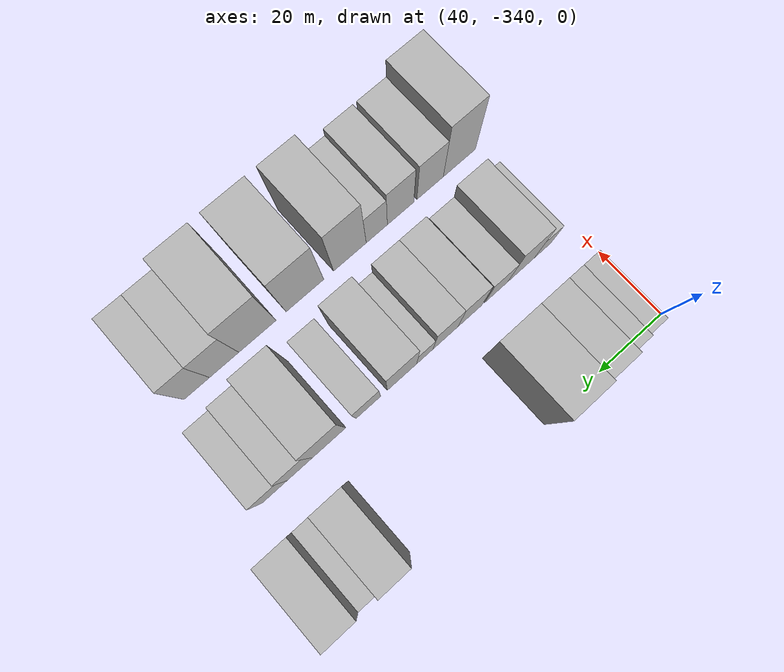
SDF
<sdf version="1.6">
 <world name="default">
  <model name="building_1">
   <static>1</static>
   <pose>50.0000 -332.4038 0 0.000000 0.000000 0.000000</pose>
   <link name="link">
    <pose>0 0 6.00 0 0 0</pose>
    <collision name="collision"><geometry><box><size>20.0000 5.1924 12.0000</size></box></geometry></collision>
    <visual name="visual">
     <cast_shadows>0</cast_shadows>
     <geometry><box><size>20.0000 5.1924 12.0000</size></box></geometry>
     <material>
      <script>
       <uri>model://HANNAS_wall/materials/scripts</uri>
       <uri>model://HANNAS_wall/materials/textures</uri>
       <name>vrc/HANNAS_wall</name>
      </script>
     </material>
    </visual>
   </link>
  </model>
  <model name="building_2">
   <static>1</static>
   <pose>50.0000 -325.5463 0 0.000000 0.000000 0.000000</pose>
   <link name="link">
    <pose>0 0 7.50 0 0 0</pose>
    <collision name="collision"><geometry><box><size>20.0000 6.5226 15.0000</size></box></geometry></collision>
    <visual name="visual">
     <cast_shadows>0</cast_shadows>
     <geometry><box><size>20.0000 6.5226 15.0000</size></box></geometry>
     <material>
      <script>
       <uri>model://HANNAS_wall/materials/scripts</uri>
       <uri>model://HANNAS_wall/materials/textures</uri>
       <name>vrc/HANNAS_wall</name>
      </script>
     </material>
    </visual>
   </link>
  </model>
  <model name="building_3">
   <static>1</static>
   <pose>50.0000 -317.9399 0 0.000000 0.000000 0.000000</pose>
   <link name="link">
    <pose>0 0 10.50 0 0 0</pose>
    <collision name="collision"><geometry><box><size>20.0000 8.6902 21.0000</size></box></geometry></collision>
    <visual name="visual">
     <cast_shadows>0</cast_shadows>
     <geometry><box><size>20.0000 8.6902 21.0000</size></box></geometry>
     <material>
      <script>
       <uri>model://HANNAS_wall/materials/scripts</uri>
       <uri>model://HANNAS_wall/materials/textures</uri>
       <name>vrc/HANNAS_wall</name>
      </script>
     </material>
    </visual>
   </link>
  </model>
  <model name="building_4">
   <static>1</static>
   <pose>50.0000 -308.0300 0 0.000000 0.000000 0.000000</pose>
   <link name="link">
    <pose>0 0 12.00 0 0 0</pose>
    <collision name="collision"><geometry><box><size>20.0000 11.1295 24.0000</size></box></geometry></collision>
    <visual name="visual">
     <cast_shadows>0</cast_shadows>
     <geometry><box><size>20.0000 11.1295 24.0000</size></box></geometry>
     <material>
      <script>
       <uri>model://HANNAS_wall/materials/scripts</uri>
       <uri>model://HANNAS_wall/materials/textures</uri>
       <name>vrc/HANNAS_wall</name>
      </script>
     </material>
    </visual>
   </link>
  </model>
  <model name="building_5">
   <static>1</static>
   <pose>50.0000 -257.8052 0 0.000000 0.000000 0.000000</pose>
   <link name="link">
    <pose>0 0 9.00 0 0 0</pose>
    <collision name="collision"><geometry><box><size>20.0000 8.4401 18.0000</size></box></geometry></collision>
    <visual name="visual">
     <cast_shadows>0</cast_shadows>
     <geometry><box><size>20.0000 8.4401 18.0000</size></box></geometry>
     <material>
      <script>
       <uri>model://HANNAS_wall/materials/scripts</uri>
       <uri>model://HANNAS_wall/materials/textures</uri>
       <name>vrc/HANNAS_wall</name>
      </script>
     </material>
    </visual>
   </link>
  </model>
  <model name="building_6">
   <static>1</static>
   <pose>50.0000 -250.8896 0 0.000000 0.000000 0.000000</pose>
   <link name="link">
    <pose>0 0 6.00 0 0 0</pose>
    <collision name="collision"><geometry><box><size>20.0000 5.3911 12.0000</size></box></geometry></collision>
    <visual name="visual">
     <cast_shadows>0</cast_shadows>
     <geometry><box><size>20.0000 5.3911 12.0000</size></box></geometry>
     <material>
      <script>
       <uri>model://HANNAS_wall/materials/scripts</uri>
       <uri>model://HANNAS_wall/materials/textures</uri>
       <name>vrc/HANNAS_wall</name>
      </script>
     </material>
    </visual>
   </link>
  </model>
  <model name="building_7">
   <static>1</static>
   <pose>50.0000 -243.8763 0 0.000000 0.000000 0.000000</pose>
   <link name="link">
    <pose>0 0 9.00 0 0 0</pose>
    <collision name="collision"><geometry><box><size>20.0000 8.6356 18.0000</size></box></geometry></collision>
    <visual name="visual">
     <cast_shadows>0</cast_shadows>
     <geometry><box><size>20.0000 8.6356 18.0000</size></box></geometry>
     <material>
      <script>
       <uri>model://HANNAS_wall/materials/scripts</uri>
       <uri>model://HANNAS_wall/materials/textures</uri>
       <name>vrc/HANNAS_wall</name>
      </script>
     </material>
    </visual>
   </link>
  </model>
  <model name="building_72">
   <static>1</static>
   <pose>79.0000 -330.2549 0 0.000000 0.000000 0.000000</pose>
   <link name="link">
    <pose>0 0 6.00 0 0 0</pose>
    <collision name="collision"><geometry><box><size>20.0000 5.4902 12.0000</size></box></geometry></collision>
    <visual name="visual">
     <cast_shadows>0</cast_shadows>
     <geometry><box><size>20.0000 5.4902 12.0000</size></box></geometry>
     <material>
      <script>
       <uri>model://HANNAS_wall/materials/scripts</uri>
       <uri>model://HANNAS_wall/materials/textures</uri>
       <name>vrc/HANNAS_wall</name>
      </script>
     </material>
    </visual>
   </link>
  </model>
  <model name="building_73">
   <static>1</static>
   <pose>79.0000 -323.1940 0 0.000000 0.000000 0.000000</pose>
   <link name="link">
    <pose>0 0 10.50 0 0 0</pose>
    <collision name="collision"><geometry><box><size>20.0000 8.6316 21.0000</size></box></geometry></collision>
    <visual name="visual">
     <cast_shadows>0</cast_shadows>
     <geometry><box><size>20.0000 8.6316 21.0000</size></box></geometry>
     <material>
      <script>
       <uri>model://HANNAS_wall/materials/scripts</uri>
       <uri>model://HANNAS_wall/materials/textures</uri>
       <name>vrc/HANNAS_wall</name>
      </script>
     </material>
    </visual>
   </link>
  </model>
  <model name="building_74">
   <static>1</static>
   <pose>79.0000 -315.2880 0 0.000000 0.000000 0.000000</pose>
   <link name="link">
    <pose>0 0 7.50 0 0 0</pose>
    <collision name="collision"><geometry><box><size>20.0000 7.1804 15.0000</size></box></geometry></collision>
    <visual name="visual">
     <cast_shadows>0</cast_shadows>
     <geometry><box><size>20.0000 7.1804 15.0000</size></box></geometry>
     <material>
      <script>
       <uri>model://HANNAS_wall/materials/scripts</uri>
       <uri>model://HANNAS_wall/materials/textures</uri>
       <name>vrc/HANNAS_wall</name>
      </script>
     </material>
    </visual>
   </link>
  </model>
  <model name="building_75">
   <static>1</static>
   <pose>79.0000 -306.9317 0 0.000000 0.000000 0.000000</pose>
   <link name="link">
    <pose>0 0 9.00 0 0 0</pose>
    <collision name="collision"><geometry><box><size>20.0000 7.5321 18.0000</size></box></geometry></collision>
    <visual name="visual">
     <cast_shadows>0</cast_shadows>
     <geometry><box><size>20.0000 7.5321 18.0000</size></box></geometry>
     <material>
      <script>
       <uri>model://HANNAS_wall/materials/scripts</uri>
       <uri>model://HANNAS_wall/materials/textures</uri>
       <name>vrc/HANNAS_wall</name>
      </script>
     </material>
    </visual>
   </link>
  </model>
  <model name="building_76">
   <static>1</static>
   <pose>79.0000 -299.2934 0 0.000000 0.000000 0.000000</pose>
   <link name="link">
    <pose>0 0 9.00 0 0 0</pose>
    <collision name="collision"><geometry><box><size>20.0000 7.7446 18.0000</size></box></geometry></collision>
    <visual name="visual">
     <cast_shadows>0</cast_shadows>
     <geometry><box><size>20.0000 7.7446 18.0000</size></box></geometry>
     <material>
      <script>
       <uri>model://HANNAS_wall/materials/scripts</uri>
       <uri>model://HANNAS_wall/materials/textures</uri>
       <name>vrc/HANNAS_wall</name>
      </script>
     </material>
    </visual>
   </link>
  </model>
  <model name="building_77">
   <static>1</static>
   <pose>79.0000 -292.9401 0 0.000000 0.000000 0.000000</pose>
   <link name="link">
    <pose>0 0 6.00 0 0 0</pose>
    <collision name="collision"><geometry><box><size>20.0000 4.9619 12.0000</size></box></geometry></collision>
    <visual name="visual">
     <cast_shadows>0</cast_shadows>
     <geometry><box><size>20.0000 4.9619 12.0000</size></box></geometry>
     <material>
      <script>
       <uri>model://HANNAS_wall/materials/scripts</uri>
       <uri>model://HANNAS_wall/materials/textures</uri>
       <name>vrc/HANNAS_wall</name>
      </script>
     </material>
    </visual>
   </link>
  </model>
  <model name="building_78">
   <static>1</static>
   <pose>79.0000 -286.0191 0 0.000000 0.000000 0.000000</pose>
   <link name="link">
    <pose>0 0 10.50 0 0 0</pose>
    <collision name="collision"><geometry><box><size>20.0000 8.8802 21.0000</size></box></geometry></collision>
    <visual name="visual">
     <cast_shadows>0</cast_shadows>
     <geometry><box><size>20.0000 8.8802 21.0000</size></box></geometry>
     <material>
      <script>
       <uri>model://HANNAS_wall/materials/scripts</uri>
       <uri>model://HANNAS_wall/materials/textures</uri>
       <name>vrc/HANNAS_wall</name>
      </script>
     </material>
    </visual>
   </link>
  </model>
  <model name="building_79">
   <static>1</static>
   <pose>79.0000 -275.9144 0 0.000000 0.000000 0.000000</pose>
   <link name="link">
    <pose>0 0 7.50 0 0 0</pose>
    <collision name="collision"><geometry><box><size>20.0000 7.3290 15.0000</size></box></geometry></collision>
    <visual name="visual">
     <cast_shadows>0</cast_shadows>
     <geometry><box><size>20.0000 7.3290 15.0000</size></box></geometry>
     <material>
      <script>
       <uri>model://HANNAS_wall/materials/scripts</uri>
       <uri>model://HANNAS_wall/materials/textures</uri>
       <name>vrc/HANNAS_wall</name>
      </script>
     </material>
    </visual>
   </link>
  </model>
  <model name="building_80">
   <static>1</static>
   <pose>79.0000 -264.3864 0 0.000000 0.000000 0.000000</pose>
   <link name="link">
    <pose>0 0 12.00 0 0 0</pose>
    <collision name="collision"><geometry><box><size>20.0000 9.7270 24.0000</size></box></geometry></collision>
    <visual name="visual">
     <cast_shadows>0</cast_shadows>
     <geometry><box><size>20.0000 9.7270 24.0000</size></box></geometry>
     <material>
      <script>
       <uri>model://HANNAS_wall/materials/scripts</uri>
       <uri>model://HANNAS_wall/materials/textures</uri>
       <name>vrc/HANNAS_wall</name>
      </script>
     </material>
    </visual>
   </link>
  </model>
  <model name="building_81">
   <static>1</static>
   <pose>79.0000 -255.8550 0 0.000000 0.000000 0.000000</pose>
   <link name="link">
    <pose>0 0 9.00 0 0 0</pose>
    <collision name="collision"><geometry><box><size>20.0000 7.3358 18.0000</size></box></geometry></collision>
    <visual name="visual">
     <cast_shadows>0</cast_shadows>
     <geometry><box><size>20.0000 7.3358 18.0000</size></box></geometry>
     <material>
      <script>
       <uri>model://HANNAS_wall/materials/scripts</uri>
       <uri>model://HANNAS_wall/materials/textures</uri>
       <name>vrc/HANNAS_wall</name>
      </script>
     </material>
    </visual>
   </link>
  </model>
  <model name="building_82">
   <static>1</static>
   <pose>79.0000 -248.6171 0 0.000000 0.000000 0.000000</pose>
   <link name="link">
    <pose>0 0 7.50 0 0 0</pose>
    <collision name="collision"><geometry><box><size>20.0000 7.1400 15.0000</size></box></geometry></collision>
    <visual name="visual">
     <cast_shadows>0</cast_shadows>
     <geometry><box><size>20.0000 7.1400 15.0000</size></box></geometry>
     <material>
      <script>
       <uri>model://HANNAS_wall/materials/scripts</uri>
       <uri>model://HANNAS_wall/materials/textures</uri>
       <name>vrc/HANNAS_wall</name>
      </script>
     </material>
    </visual>
   </link>
  </model>
  <model name="building_149">
   <static>1</static>
   <pose>108.0000 -330.7446 0 0.000000 0.000000 0.000000</pose>
   <link name="link">
    <pose>0 0 12.00 0 0 0</pose>
    <collision name="collision"><geometry><box><size>20.0000 10.5108 24.0000</size></box></geometry></collision>
    <visual name="visual">
     <cast_shadows>0</cast_shadows>
     <geometry><box><size>20.0000 10.5108 24.0000</size></box></geometry>
     <material>
      <script>
       <uri>model://HANNAS_wall/materials/scripts</uri>
       <uri>model://HANNAS_wall/materials/textures</uri>
       <name>vrc/HANNAS_wall</name>
      </script>
     </material>
    </visual>
   </link>
  </model>
  <model name="building_150">
   <static>1</static>
   <pose>108.0000 -321.2250 0 0.000000 0.000000 0.000000</pose>
   <link name="link">
    <pose>0 0 9.00 0 0 0</pose>
    <collision name="collision"><geometry><box><size>20.0000 8.5284 18.0000</size></box></geometry></collision>
    <visual name="visual">
     <cast_shadows>0</cast_shadows>
     <geometry><box><size>20.0000 8.5284 18.0000</size></box></geometry>
     <material>
      <script>
       <uri>model://HANNAS_wall/materials/scripts</uri>
       <uri>model://HANNAS_wall/materials/textures</uri>
       <name>vrc/HANNAS_wall</name>
      </script>
     </material>
    </visual>
   </link>
  </model>
  <model name="building_151">
   <static>1</static>
   <pose>108.0000 -311.7563 0 0.000000 0.000000 0.000000</pose>
   <link name="link">
    <pose>0 0 9.00 0 0 0</pose>
    <collision name="collision"><geometry><box><size>20.0000 8.4089 18.0000</size></box></geometry></collision>
    <visual name="visual">
     <cast_shadows>0</cast_shadows>
     <geometry><box><size>20.0000 8.4089 18.0000</size></box></geometry>
     <material>
      <script>
       <uri>model://HANNAS_wall/materials/scripts</uri>
       <uri>model://HANNAS_wall/materials/textures</uri>
       <name>vrc/HANNAS_wall</name>
      </script>
     </material>
    </visual>
   </link>
  </model>
  <model name="building_152">
   <static>1</static>
   <pose>108.0000 -304.2435 0 0.000000 0.000000 0.000000</pose>
   <link name="link">
    <pose>0 0 7.50 0 0 0</pose>
    <collision name="collision"><geometry><box><size>20.0000 6.6169 15.0000</size></box></geometry></collision>
    <visual name="visual">
     <cast_shadows>0</cast_shadows>
     <geometry><box><size>20.0000 6.6169 15.0000</size></box></geometry>
     <material>
      <script>
       <uri>model://HANNAS_wall/materials/scripts</uri>
       <uri>model://HANNAS_wall/materials/textures</uri>
       <name>vrc/HANNAS_wall</name>
      </script>
     </material>
    </visual>
   </link>
  </model>
  <model name="building_153">
   <static>1</static>
   <pose>108.0000 -295.8666 0 0.000000 0.000000 0.000000</pose>
   <link name="link">
    <pose>0 0 12.00 0 0 0</pose>
    <collision name="collision"><geometry><box><size>20.0000 10.1368 24.0000</size></box></geometry></collision>
    <visual name="visual">
     <cast_shadows>0</cast_shadows>
     <geometry><box><size>20.0000 10.1368 24.0000</size></box></geometry>
     <material>
      <script>
       <uri>model://HANNAS_wall/materials/scripts</uri>
       <uri>model://HANNAS_wall/materials/textures</uri>
       <name>vrc/HANNAS_wall</name>
      </script>
     </material>
    </visual>
   </link>
  </model>
  <model name="building_154">
   <static>1</static>
   <pose>108.0000 -282.0680 0 0.000000 0.000000 0.000000</pose>
   <link name="link">
    <pose>0 0 12.00 0 0 0</pose>
    <collision name="collision"><geometry><box><size>20.0000 11.4604 24.0000</size></box></geometry></collision>
    <visual name="visual">
     <cast_shadows>0</cast_shadows>
     <geometry><box><size>20.0000 11.4604 24.0000</size></box></geometry>
     <material>
      <script>
       <uri>model://HANNAS_wall/materials/scripts</uri>
       <uri>model://HANNAS_wall/materials/textures</uri>
       <name>vrc/HANNAS_wall</name>
      </script>
     </material>
    </visual>
   </link>
  </model>
  <model name="building_155">
   <static>1</static>
   <pose>108.0000 -267.8247 0 0.000000 0.000000 0.000000</pose>
   <link name="link">
    <pose>0 0 12.00 0 0 0</pose>
    <collision name="collision"><geometry><box><size>20.0000 11.0262 24.0000</size></box></geometry></collision>
    <visual name="visual">
     <cast_shadows>0</cast_shadows>
     <geometry><box><size>20.0000 11.0262 24.0000</size></box></geometry>
     <material>
      <script>
       <uri>model://HANNAS_wall/materials/scripts</uri>
       <uri>model://HANNAS_wall/materials/textures</uri>
       <name>vrc/HANNAS_wall</name>
      </script>
     </material>
    </visual>
   </link>
  </model>
  <model name="building_156">
   <static>1</static>
   <pose>108.0000 -258.0362 0 0.000000 0.000000 0.000000</pose>
   <link name="link">
    <pose>0 0 9.00 0 0 0</pose>
    <collision name="collision"><geometry><box><size>20.0000 8.5509 18.0000</size></box></geometry></collision>
    <visual name="visual">
     <cast_shadows>0</cast_shadows>
     <geometry><box><size>20.0000 8.5509 18.0000</size></box></geometry>
     <material>
      <script>
       <uri>model://HANNAS_wall/materials/scripts</uri>
       <uri>model://HANNAS_wall/materials/textures</uri>
       <name>vrc/HANNAS_wall</name>
      </script>
     </material>
    </visual>
   </link>
  </model>
  <model name="building_157">
   <static>1</static>
   <pose>108.0000 -250.0762 0 0.000000 0.000000 0.000000</pose>
   <link name="link">
    <pose>0 0 9.00 0 0 0</pose>
    <collision name="collision"><geometry><box><size>20.0000 7.3690 18.0000</size></box></geometry></collision>
    <visual name="visual">
     <cast_shadows>0</cast_shadows>
     <geometry><box><size>20.0000 7.3690 18.0000</size></box></geometry>
     <material>
      <script>
       <uri>model://HANNAS_wall/materials/scripts</uri>
       <uri>model://HANNAS_wall/materials/textures</uri>
       <name>vrc/HANNAS_wall</name>
      </script>
     </material>
    </visual>
   </link>
  </model>
 </world>
</sdf>
